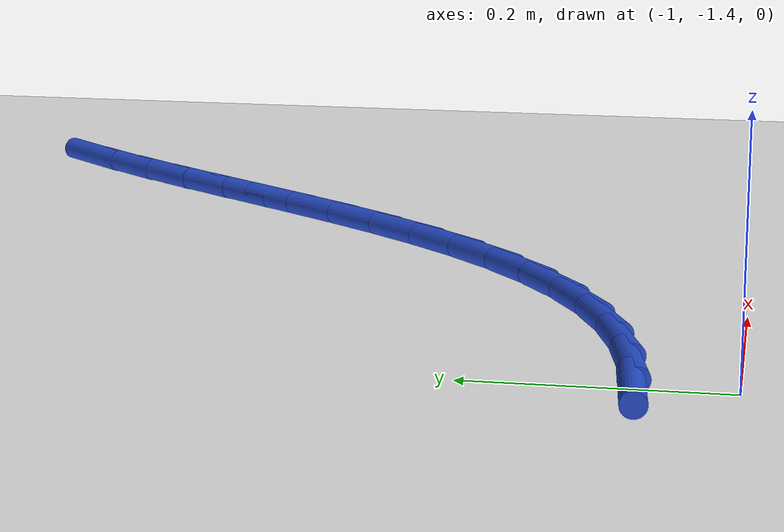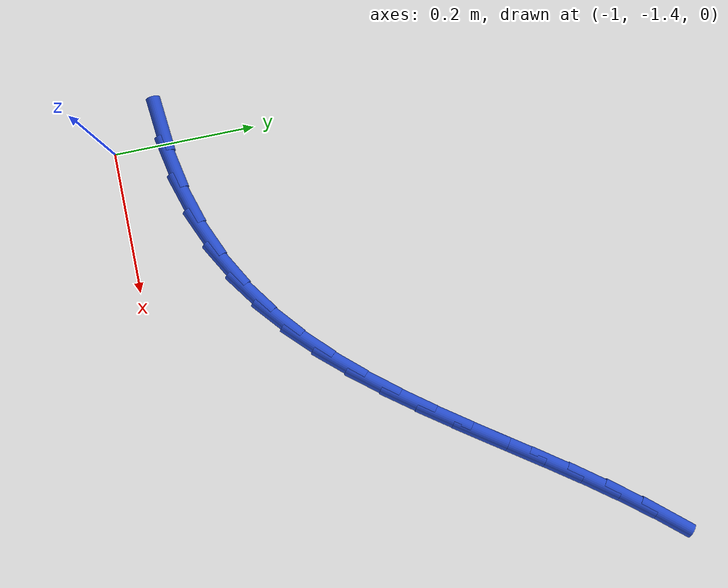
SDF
<sdf version="1.6">
 <world name="default">
  <model name="ground_plane">
   <static>1</static>
   <link name="link">
    <collision name="collision">
     <geometry><plane><normal>0 0 1</normal><size>100 100</size></plane></geometry>
     <surface><friction><ode><mu>100</mu><mu2>50</mu2></ode></friction></surface>
    </collision>
    <visual name="visual">
     <cast_shadows>0</cast_shadows>
     <geometry><plane><normal>0 0 1</normal><size>100 100</size></plane></geometry>
     <material>
      <script><uri>file://media/materials/scripts/gazebo.material</uri><name>Gazebo/WhiteGlow</name></script>
     </material>
    </visual>
   </link>
  </model>
  <model name="line">
   <link name="link_107">
    <pose>-1.0259010491011638 -1.326562376609913 0.01 0 1.57 0.09411524712296203</pose>
    <collision name="collision">
     <geometry><cylinder><radius>0.01</radius><length>0.08</length></cylinder></geometry>
    </collision>
    <visual name="visual">
     <material>
      <script><name>Gazebo/Blue</name><uri>file://media/materials/scripts/gazebo.material</uri></script>
     </material>
     <geometry><cylinder><radius>0.01</radius><length>0.08</length></cylinder></geometry>
    </visual>
   </link>
   <link name="link_108">
    <pose>-0.9699363976876342 -1.3212796428055735 0.01 0 1.57 0.19358564478721624</pose>
    <collision name="collision">
     <geometry><cylinder><radius>0.01</radius><length>0.08</length></cylinder></geometry>
    </collision>
    <visual name="visual">
     <material>
      <script><name>Gazebo/Blue</name><uri>file://media/materials/scripts/gazebo.material</uri></script>
     </material>
     <geometry><cylinder><radius>0.01</radius><length>0.08</length></cylinder></geometry>
    </visual>
   </link>
   <link name="link_109">
    <pose>-0.9151683322599834 -1.3105428736823477 0.01 0 1.57 0.2963305062308988</pose>
    <collision name="collision">
     <geometry><cylinder><radius>0.01</radius><length>0.08</length></cylinder></geometry>
    </collision>
    <visual name="visual">
     <material>
      <script><name>Gazebo/Blue</name><uri>file://media/materials/scripts/gazebo.material</uri></script>
     </material>
     <geometry><cylinder><radius>0.01</radius><length>0.08</length></cylinder></geometry>
    </visual>
   </link>
   <link name="link_110">
    <pose>-0.8626399670333216 -1.2945049044589687 0.01 0 1.57 0.4059443335865981</pose>
    <collision name="collision">
     <geometry><cylinder><radius>0.01</radius><length>0.08</length></cylinder></geometry>
    </collision>
    <visual name="visual">
     <material>
      <script><name>Gazebo/Blue</name><uri>file://media/materials/scripts/gazebo.material</uri></script>
     </material>
     <geometry><cylinder><radius>0.01</radius><length>0.08</length></cylinder></geometry>
    </visual>
   </link>
   <link name="link_111">
    <pose>-0.8133657457560187 -1.273325963938793 0.01 0 1.57 0.5170305363740019</pose>
    <collision name="collision">
     <geometry><cylinder><radius>0.01</radius><length>0.08</length></cylinder></geometry>
    </collision>
    <visual name="visual">
     <material>
      <script><name>Gazebo/Blue</name><uri>file://media/materials/scripts/gazebo.material</uri></script>
     </material>
     <geometry><cylinder><radius>0.01</radius><length>0.08</length></cylinder></geometry>
    </visual>
   </link>
   <link name="link_112">
    <pose>-0.7676724851395678 -1.2473436072566244 0.01 0 1.57 0.6189603699077258</pose>
    <collision name="collision">
     <geometry><cylinder><radius>0.01</radius><length>0.08</length></cylinder></geometry>
    </collision>
    <visual name="visual">
     <material>
      <script><name>Gazebo/Blue</name><uri>file://media/materials/scripts/gazebo.material</uri></script>
     </material>
     <geometry><cylinder><radius>0.01</radius><length>0.08</length></cylinder></geometry>
    </visual>
   </link>
   <link name="link_113">
    <pose>-0.7251833297763723 -1.2170768536095082 0.01 0 1.57 0.7086359356302956</pose>
    <collision name="collision">
     <geometry><cylinder><radius>0.01</radius><length>0.08</length></cylinder></geometry>
    </collision>
    <visual name="visual">
     <material>
      <script><name>Gazebo/Blue</name><uri>file://media/materials/scripts/gazebo.material</uri></script>
     </material>
     <geometry><cylinder><radius>0.01</radius><length>0.08</length></cylinder></geometry>
    </visual>
   </link>
   <link name="link_114">
    <pose>-0.6854895442404401 -1.1830529434632984 0.01 0 1.57 0.7846829776791129</pose>
    <collision name="collision">
     <geometry><cylinder><radius>0.01</radius><length>0.08</length></cylinder></geometry>
    </collision>
    <visual name="visual">
     <material>
      <script><name>Gazebo/Blue</name><uri>file://media/materials/scripts/gazebo.material</uri></script>
     </material>
     <geometry><cylinder><radius>0.01</radius><length>0.08</length></cylinder></geometry>
    </visual>
   </link>
   <link name="link_115">
    <pose>-0.648182393105776 -1.1457991172838462 0.01 0 1.57 0.8467834299159013</pose>
    <collision name="collision">
     <geometry><cylinder><radius>0.01</radius><length>0.08</length></cylinder></geometry>
    </collision>
    <visual name="visual">
     <material>
      <script><name>Gazebo/Blue</name><uri>file://media/materials/scripts/gazebo.material</uri></script>
     </material>
     <geometry><cylinder><radius>0.01</radius><length>0.08</length></cylinder></geometry>
    </visual>
   </link>
   <link name="link_116">
    <pose>-0.612853140946386 -1.1058426155370051 0.01 0 1.57 0.8952665631366745</pose>
    <collision name="collision">
     <geometry><cylinder><radius>0.01</radius><length>0.08</length></cylinder></geometry>
    </collision>
    <visual name="visual">
     <material>
      <script><name>Gazebo/Blue</name><uri>file://media/materials/scripts/gazebo.material</uri></script>
     </material>
     <geometry><cylinder><radius>0.01</radius><length>0.08</length></cylinder></geometry>
    </visual>
   </link>
   <link name="link_117">
    <pose>-0.5790930523362756 -1.063710678688627 0.01 0 1.57 0.9307458645899167</pose>
    <collision name="collision">
     <geometry><cylinder><radius>0.01</radius><length>0.08</length></cylinder></geometry>
    </collision>
    <visual name="visual">
     <material>
      <script><name>Gazebo/Blue</name><uri>file://media/materials/scripts/gazebo.material</uri></script>
     </material>
     <geometry><cylinder><radius>0.01</radius><length>0.08</length></cylinder></geometry>
    </visual>
   </link>
   <link name="link_118">
    <pose>-0.5464933918494513 -1.0199305472045657 0.01 0 1.57 0.9538614992104931</pose>
    <collision name="collision">
     <geometry><cylinder><radius>0.01</radius><length>0.08</length></cylinder></geometry>
    </collision>
    <visual name="visual">
     <material>
      <script><name>Gazebo/Blue</name><uri>file://media/materials/scripts/gazebo.material</uri></script>
     </material>
     <geometry><cylinder><radius>0.01</radius><length>0.08</length></cylinder></geometry>
    </visual>
   </link>
   <link name="link_119">
    <pose>-0.5146454240599191 -0.9750294615506736 0.01 0 1.57 0.965123725594551</pose>
    <collision name="collision">
     <geometry><cylinder><radius>0.01</radius><length>0.08</length></cylinder></geometry>
    </collision>
    <visual name="visual">
     <material>
      <script><name>Gazebo/Blue</name><uri>file://media/materials/scripts/gazebo.material</uri></script>
     </material>
     <geometry><cylinder><radius>0.01</radius><length>0.08</length></cylinder></geometry>
    </visual>
   </link>
   <link name="link_120">
    <pose>-0.4831404135416843 -0.9295346621928031 0.01 0 1.57 0.9648308676558625</pose>
    <collision name="collision">
     <geometry><cylinder><radius>0.01</radius><length>0.08</length></cylinder></geometry>
    </collision>
    <visual name="visual">
     <material>
      <script><name>Gazebo/Blue</name><uri>file://media/materials/scripts/gazebo.material</uri></script>
     </material>
     <geometry><cylinder><radius>0.01</radius><length>0.08</length></cylinder></geometry>
    </visual>
   </link>
   <link name="link_121">
    <pose>-0.4515696248687529 -0.8839733895968069 0.01 0 1.57 0.9530375610714045</pose>
    <collision name="collision">
     <geometry><cylinder><radius>0.01</radius><length>0.08</length></cylinder></geometry>
    </collision>
    <visual name="visual">
     <material>
      <script><name>Gazebo/Blue</name><uri>file://media/materials/scripts/gazebo.material</uri></script>
     </material>
     <geometry><cylinder><radius>0.01</radius><length>0.08</length></cylinder></geometry>
    </visual>
   </link>
   <link name="link_122">
    <pose>-0.41952432261513045 -0.8388728842285371 0.01 0 1.57 0.9295597754086503</pose>
    <collision name="collision">
     <geometry><cylinder><radius>0.01</radius><length>0.08</length></cylinder></geometry>
    </collision>
    <visual name="visual">
     <material>
      <script><name>Gazebo/Blue</name><uri>file://media/materials/scripts/gazebo.material</uri></script>
     </material>
     <geometry><cylinder><radius>0.01</radius><length>0.08</length></cylinder></geometry>
    </visual>
   </link>
   <link name="link_123">
    <pose>-0.3865957713548236 -0.7947603865538478 0.01 0 1.57 0.8954819469498174</pose>
    <collision name="collision">
     <geometry><cylinder><radius>0.01</radius><length>0.08</length></cylinder></geometry>
    </collision>
    <visual name="visual">
     <material>
      <script><name>Gazebo/Blue</name><uri>file://media/materials/scripts/gazebo.material</uri></script>
     </material>
     <geometry><cylinder><radius>0.01</radius><length>0.08</length></cylinder></geometry>
    </visual>
   </link>
   <link name="link_124">
    <pose>-0.352431188034096 -0.7521048240462236 0.01 0 1.57 0.8656455889003595</pose>
    <collision name="collision">
     <geometry><cylinder><radius>0.01</radius><length>0.08</length></cylinder></geometry>
    </collision>
    <visual name="visual">
     <material>
      <script><name>Gazebo/Blue</name><uri>file://media/materials/scripts/gazebo.material</uri></script>
     </material>
     <geometry><cylinder><radius>0.01</radius><length>0.08</length></cylinder></geometry>
    </visual>
   </link>
  </model>
 </world>
</sdf>
